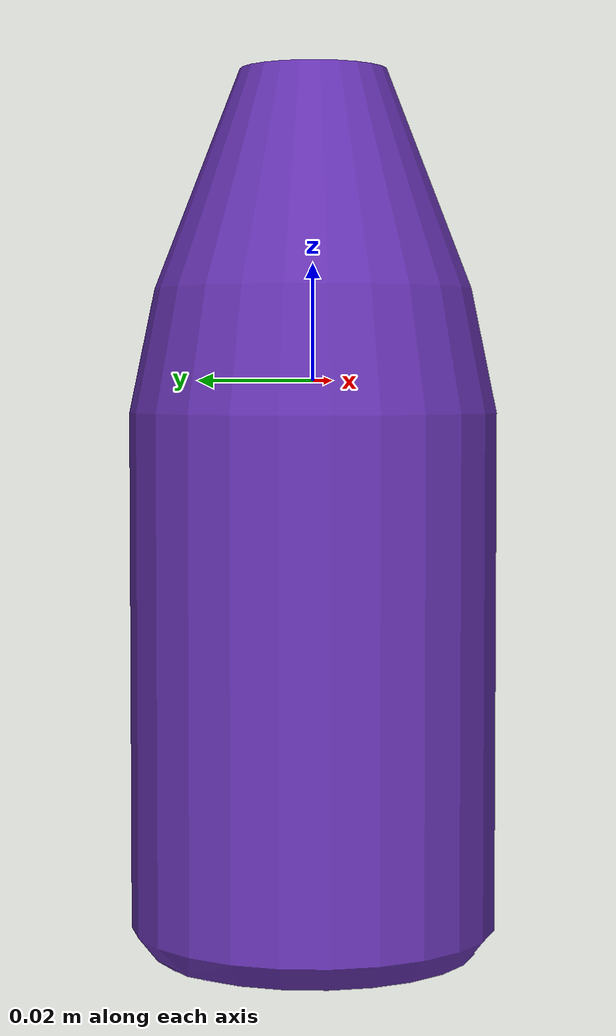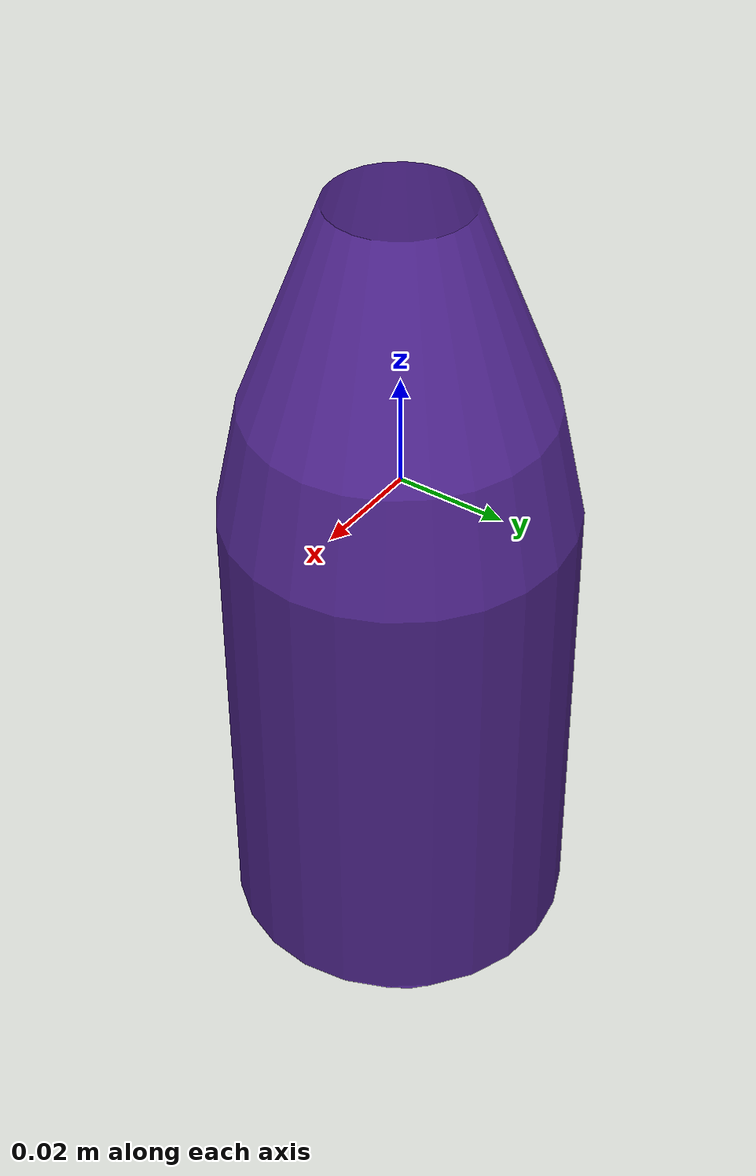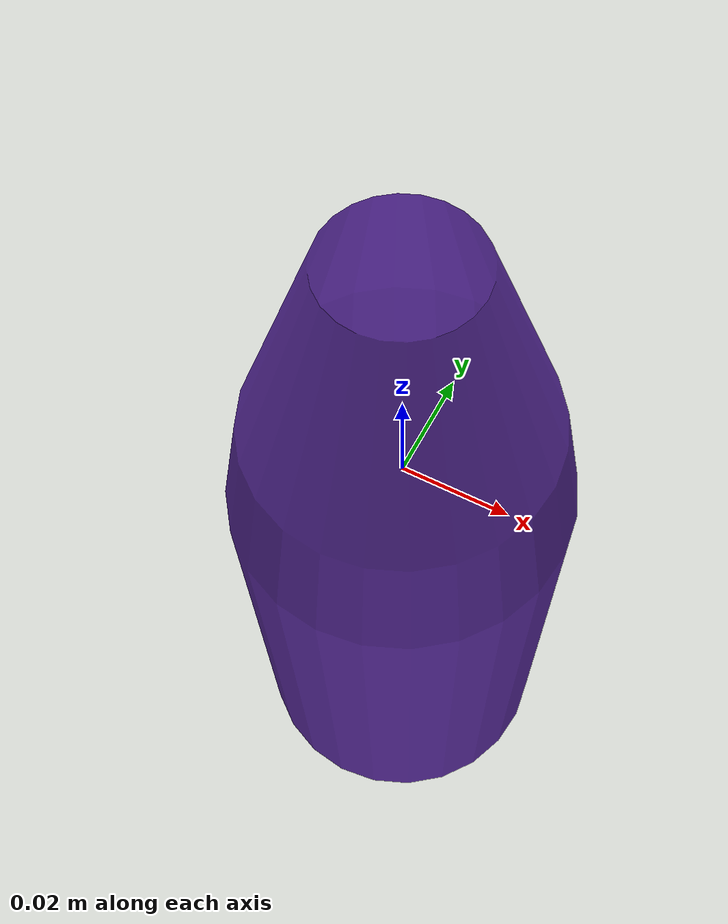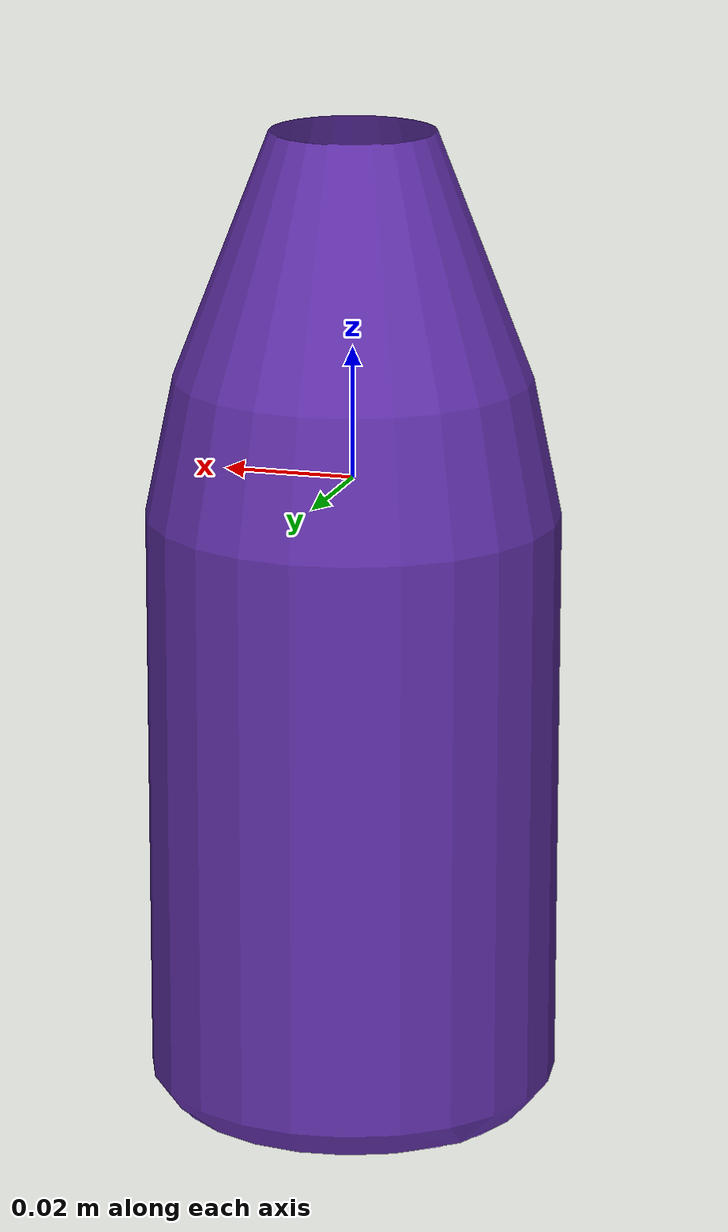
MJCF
<mujoco model="top_watertight_tiny">
  <default>
    <default group="2" type="mesh" contype="0" conaffinity="0">
      <geom group="2" type="mesh" contype="0" conaffinity="0"/>
    </default>
    <default group="3" type="mesh">
      <geom group="3" type="mesh"/>
    </default>
  </default>
  <asset>
    <mesh file="top_watertight_tiny.obj"/>
    <mesh file="top_watertight_tiny_collision_0.obj"/>
    <mesh file="top_watertight_tiny_collision_1.obj"/>
    <mesh file="top_watertight_tiny_collision_2.obj"/>
    <mesh file="top_watertight_tiny_collision_3.obj"/>
    <mesh file="top_watertight_tiny_collision_4.obj"/>
    <mesh file="top_watertight_tiny_collision_5.obj"/>
    <mesh file="top_watertight_tiny_collision_6.obj"/>
    <mesh file="top_watertight_tiny_collision_7.obj"/>
    <mesh file="top_watertight_tiny_collision_8.obj"/>
    <mesh file="top_watertight_tiny_collision_9.obj"/>
    <mesh file="top_watertight_tiny_collision_10.obj"/>
    <mesh file="top_watertight_tiny_collision_11.obj"/>
    <mesh file="top_watertight_tiny_collision_12.obj"/>
    <mesh file="top_watertight_tiny_collision_13.obj"/>
    <mesh file="top_watertight_tiny_collision_14.obj"/>
    <mesh file="top_watertight_tiny_collision_15.obj"/>
    <mesh file="top_watertight_tiny_collision_16.obj"/>
    <mesh file="top_watertight_tiny_collision_17.obj"/>
    <mesh file="top_watertight_tiny_collision_18.obj"/>
    <mesh file="top_watertight_tiny_collision_19.obj"/>
    <mesh file="top_watertight_tiny_collision_20.obj"/>
    <mesh file="top_watertight_tiny_collision_21.obj"/>
    <mesh file="top_watertight_tiny_collision_22.obj"/>
    <mesh file="top_watertight_tiny_collision_23.obj"/>
    <mesh file="top_watertight_tiny_collision_24.obj"/>
    <mesh file="top_watertight_tiny_collision_25.obj"/>
    <mesh file="top_watertight_tiny_collision_26.obj"/>
    <mesh file="top_watertight_tiny_collision_27.obj"/>
    <mesh file="top_watertight_tiny_collision_28.obj"/>
    <mesh file="top_watertight_tiny_collision_29.obj"/>
    <mesh file="top_watertight_tiny_collision_30.obj"/>
    <mesh file="top_watertight_tiny_collision_31.obj"/>
    <mesh file="top_watertight_tiny_collision_32.obj"/>
    <mesh file="top_watertight_tiny_collision_33.obj"/>
    <mesh file="top_watertight_tiny_collision_34.obj"/>
    <mesh file="top_watertight_tiny_collision_35.obj"/>
    <mesh file="top_watertight_tiny_collision_36.obj"/>
    <mesh file="top_watertight_tiny_collision_37.obj"/>
    <mesh file="top_watertight_tiny_collision_38.obj"/>
    <mesh file="top_watertight_tiny_collision_39.obj"/>
    <mesh file="top_watertight_tiny_collision_40.obj"/>
    <mesh file="top_watertight_tiny_collision_41.obj"/>
    <mesh file="top_watertight_tiny_collision_42.obj"/>
    <mesh file="top_watertight_tiny_collision_43.obj"/>
    <mesh file="top_watertight_tiny_collision_44.obj"/>
    <mesh file="top_watertight_tiny_collision_45.obj"/>
    <mesh file="top_watertight_tiny_collision_46.obj"/>
    <mesh file="top_watertight_tiny_collision_47.obj"/>
    <mesh file="top_watertight_tiny_collision_48.obj"/>
    <mesh file="top_watertight_tiny_collision_49.obj"/>
    <mesh file="top_watertight_tiny_collision_50.obj"/>
    <mesh file="top_watertight_tiny_collision_51.obj"/>
    <mesh file="top_watertight_tiny_collision_52.obj"/>
    <mesh file="top_watertight_tiny_collision_53.obj"/>
    <mesh file="top_watertight_tiny_collision_54.obj"/>
    <mesh file="top_watertight_tiny_collision_55.obj"/>
    <mesh file="top_watertight_tiny_collision_56.obj"/>
    <mesh file="top_watertight_tiny_collision_57.obj"/>
    <mesh file="top_watertight_tiny_collision_58.obj"/>
    <mesh file="top_watertight_tiny_collision_59.obj"/>
    <mesh file="top_watertight_tiny_collision_60.obj"/>
    <mesh file="top_watertight_tiny_collision_61.obj"/>
    <mesh file="top_watertight_tiny_collision_62.obj"/>
    <mesh file="top_watertight_tiny_collision_63.obj"/>
    <mesh file="top_watertight_tiny_collision_64.obj"/>
    <mesh file="top_watertight_tiny_collision_65.obj"/>
    <mesh file="top_watertight_tiny_collision_66.obj"/>
    <mesh file="top_watertight_tiny_collision_67.obj"/>
    <mesh file="top_watertight_tiny_collision_68.obj"/>
    <mesh file="top_watertight_tiny_collision_69.obj"/>
    <mesh file="top_watertight_tiny_collision_70.obj"/>
    <mesh file="top_watertight_tiny_collision_71.obj"/>
    <mesh file="top_watertight_tiny_collision_72.obj"/>
    <mesh file="top_watertight_tiny_collision_73.obj"/>
    <mesh file="top_watertight_tiny_collision_74.obj"/>
    <mesh file="top_watertight_tiny_collision_75.obj"/>
    <mesh file="top_watertight_tiny_collision_76.obj"/>
    <mesh file="top_watertight_tiny_collision_77.obj"/>
    <mesh file="top_watertight_tiny_collision_78.obj"/>
    <mesh file="top_watertight_tiny_collision_79.obj"/>
    <mesh file="top_watertight_tiny_collision_80.obj"/>
    <mesh file="top_watertight_tiny_collision_81.obj"/>
    <mesh file="top_watertight_tiny_collision_82.obj"/>
  </asset>
  <worldbody>
    <body name="top_watertight_tiny">
      <freejoint/>
      <geom mesh="top_watertight_tiny" group="2" type="mesh" rgba="0.4 0.2 0.7 1" contype="0" conaffinity="0"/>
      <geom mesh="top_watertight_tiny_collision_0" rgba="0.49883784449646984 0.246895000223888 0.16158867115685116 1" group="3" type="mesh"/>
      <geom mesh="top_watertight_tiny_collision_1" rgba="0.8345473105322501 0.25377192499867696 0.39321501535068326 1" group="3" type="mesh"/>
      <geom mesh="top_watertight_tiny_collision_2" rgba="0.2550216522857788 0.3245934787245712 0.8836250176641155 1" group="3" type="mesh"/>
      <geom mesh="top_watertight_tiny_collision_3" rgba="0.14826445036341396 0.8066232600685955 0.9007736870052253 1" group="3" type="mesh"/>
      <geom mesh="top_watertight_tiny_collision_4" rgba="0.28227866197487705 0.49570641920752334 0.16747657972650187 1" group="3" type="mesh"/>
      <geom mesh="top_watertight_tiny_collision_5" rgba="0.28502695696535985 0.9426089094257076 0.9849852484269805 1" group="3" type="mesh"/>
      <geom mesh="top_watertight_tiny_collision_6" rgba="0.05626545187940246 0.6287144068096627 0.39869210786258025 1" group="3" type="mesh"/>
      <geom mesh="top_watertight_tiny_collision_7" rgba="0.8283683494532545 0.2509252008094861 0.6738826889560452 1" group="3" type="mesh"/>
      <geom mesh="top_watertight_tiny_collision_8" rgba="0.6534201178815007 0.5609492384752743 0.15457730560713534 1" group="3" type="mesh"/>
      <geom mesh="top_watertight_tiny_collision_9" rgba="0.6429444181970184 0.15714382337910926 0.456624958087295 1" group="3" type="mesh"/>
      <geom mesh="top_watertight_tiny_collision_10" rgba="0.5450225480032104 0.030394017111941896 0.5532561704240037 1" group="3" type="mesh"/>
      <geom mesh="top_watertight_tiny_collision_11" rgba="0.9167375720371018 0.6156698111652914 0.30447335632587713 1" group="3" type="mesh"/>
      <geom mesh="top_watertight_tiny_collision_12" rgba="0.962463308652028 0.3905603219165593 0.29472620906892977 1" group="3" type="mesh"/>
      <geom mesh="top_watertight_tiny_collision_13" rgba="0.8199889108243177 0.6474923560538576 0.6391054816819643 1" group="3" type="mesh"/>
      <geom mesh="top_watertight_tiny_collision_14" rgba="0.8562449450970382 0.557012700590551 0.7347422034914745 1" group="3" type="mesh"/>
      <geom mesh="top_watertight_tiny_collision_15" rgba="0.4182069440744033 0.4543724260908353 0.047659050217376375 1" group="3" type="mesh"/>
      <geom mesh="top_watertight_tiny_collision_16" rgba="0.09126107637779213 0.4941117570213627 0.6288863748668974 1" group="3" type="mesh"/>
      <geom mesh="top_watertight_tiny_collision_17" rgba="0.7946214365258446 0.36136801596849866 0.7922639244201731 1" group="3" type="mesh"/>
      <geom mesh="top_watertight_tiny_collision_18" rgba="0.48126517186135953 0.5500439485715393 0.9972539067765988 1" group="3" type="mesh"/>
      <geom mesh="top_watertight_tiny_collision_19" rgba="0.9317512762726756 0.5854053644618584 0.7313646300559788 1" group="3" type="mesh"/>
      <geom mesh="top_watertight_tiny_collision_20" rgba="0.8401127687544482 0.8610434688496024 0.06658368284452965 1" group="3" type="mesh"/>
      <geom mesh="top_watertight_tiny_collision_21" rgba="0.8668011215045307 0.12933630222982184 0.5203769494060676 1" group="3" type="mesh"/>
      <geom mesh="top_watertight_tiny_collision_22" rgba="0.7922736238508549 0.8201267228727137 0.5548340246789137 1" group="3" type="mesh"/>
      <geom mesh="top_watertight_tiny_collision_23" rgba="0.0753454889962678 0.24593654317796332 0.13923263222710303 1" group="3" type="mesh"/>
      <geom mesh="top_watertight_tiny_collision_24" rgba="0.8996831504346626 0.7059565617067342 0.26214386651165467 1" group="3" type="mesh"/>
      <geom mesh="top_watertight_tiny_collision_25" rgba="0.7959513061702392 0.4680545767129437 0.14105629942936515 1" group="3" type="mesh"/>
      <geom mesh="top_watertight_tiny_collision_26" rgba="0.26677246817408895 0.15224153459277223 0.258093090004186 1" group="3" type="mesh"/>
      <geom mesh="top_watertight_tiny_collision_27" rgba="0.4768877632445466 0.044402618325953824 0.07191120494806547 1" group="3" type="mesh"/>
      <geom mesh="top_watertight_tiny_collision_28" rgba="0.31164276826048076 0.16715786681178701 0.8828898023186729 1" group="3" type="mesh"/>
      <geom mesh="top_watertight_tiny_collision_29" rgba="0.7377835541165819 0.9626112428824883 0.26507297216934866 1" group="3" type="mesh"/>
      <geom mesh="top_watertight_tiny_collision_30" rgba="0.13656161692034918 0.39690502873597877 0.05755895516447018 1" group="3" type="mesh"/>
      <geom mesh="top_watertight_tiny_collision_31" rgba="0.12938877627407896 0.8250663199161751 0.9616704905376701 1" group="3" type="mesh"/>
      <geom mesh="top_watertight_tiny_collision_32" rgba="0.07998868319259922 0.15925588995471984 0.3887032042973799 1" group="3" type="mesh"/>
      <geom mesh="top_watertight_tiny_collision_33" rgba="0.7346118755346789 0.6079297969501118 0.23192874482633674 1" group="3" type="mesh"/>
      <geom mesh="top_watertight_tiny_collision_34" rgba="0.23037015617190648 0.11932732012183711 0.11004629763727813 1" group="3" type="mesh"/>
      <geom mesh="top_watertight_tiny_collision_35" rgba="0.67399789985303 0.04065309619964108 0.9372915472786318 1" group="3" type="mesh"/>
      <geom mesh="top_watertight_tiny_collision_36" rgba="0.4845434306790424 0.9463269728558577 0.8197878755453236 1" group="3" type="mesh"/>
      <geom mesh="top_watertight_tiny_collision_37" rgba="0.09610699307228376 0.31974591125785257 0.00937636059854674 1" group="3" type="mesh"/>
      <geom mesh="top_watertight_tiny_collision_38" rgba="0.8577960857447914 0.21085853054512382 0.8156777924136619 1" group="3" type="mesh"/>
      <geom mesh="top_watertight_tiny_collision_39" rgba="0.5041747199347316 0.5757690901050623 0.9399555377846293 1" group="3" type="mesh"/>
      <geom mesh="top_watertight_tiny_collision_40" rgba="0.30591235184135745 0.5183761118273235 0.47844046559222286 1" group="3" type="mesh"/>
      <geom mesh="top_watertight_tiny_collision_41" rgba="0.6476668680019748 0.952457405089565 0.6865597421112919 1" group="3" type="mesh"/>
      <geom mesh="top_watertight_tiny_collision_42" rgba="0.3614138671728806 0.02865112463499553 0.5020785477419976 1" group="3" type="mesh"/>
      <geom mesh="top_watertight_tiny_collision_43" rgba="0.7594928226103579 0.20270764067942892 0.6066542270247074 1" group="3" type="mesh"/>
      <geom mesh="top_watertight_tiny_collision_44" rgba="0.8666217145891124 0.9198317900646883 0.02443120821557898 1" group="3" type="mesh"/>
      <geom mesh="top_watertight_tiny_collision_45" rgba="0.8660516576301012 0.14119109973625854 0.33741050867823785 1" group="3" type="mesh"/>
      <geom mesh="top_watertight_tiny_collision_46" rgba="0.6696881249126978 0.9004442980537171 0.30972602218935086 1" group="3" type="mesh"/>
      <geom mesh="top_watertight_tiny_collision_47" rgba="0.012778210428603831 0.7269477607841739 0.9562801608317336 1" group="3" type="mesh"/>
      <geom mesh="top_watertight_tiny_collision_48" rgba="0.7005786193869399 0.9414450529822467 0.5362391769698661 1" group="3" type="mesh"/>
      <geom mesh="top_watertight_tiny_collision_49" rgba="0.23148975046749742 0.1725358798670048 0.932935717814535 1" group="3" type="mesh"/>
      <geom mesh="top_watertight_tiny_collision_50" rgba="0.1975168599999617 0.5306693585337099 0.40061918653192574 1" group="3" type="mesh"/>
      <geom mesh="top_watertight_tiny_collision_51" rgba="0.8239767940267443 0.18174455231531472 0.49648048653543164 1" group="3" type="mesh"/>
      <geom mesh="top_watertight_tiny_collision_52" rgba="0.9479638962614196 0.5669959886411082 0.9044376612857019 1" group="3" type="mesh"/>
      <geom mesh="top_watertight_tiny_collision_53" rgba="0.2843377144932634 0.06999650065785035 0.2150054711271524 1" group="3" type="mesh"/>
      <geom mesh="top_watertight_tiny_collision_54" rgba="0.13404140946627607 0.4605951238869608 0.25585290080033163 1" group="3" type="mesh"/>
      <geom mesh="top_watertight_tiny_collision_55" rgba="0.8190853291461876 0.6737327851071673 0.5586620085068742 1" group="3" type="mesh"/>
      <geom mesh="top_watertight_tiny_collision_56" rgba="0.5446383721193833 0.14438032645607657 0.5819741478615044 1" group="3" type="mesh"/>
      <geom mesh="top_watertight_tiny_collision_57" rgba="0.8843684733446897 0.40118331577162525 0.6311644193741455 1" group="3" type="mesh"/>
      <geom mesh="top_watertight_tiny_collision_58" rgba="0.10084208035691733 0.02011061756631316 0.43134211620891216 1" group="3" type="mesh"/>
      <geom mesh="top_watertight_tiny_collision_59" rgba="0.5817815507629659 0.4858959612599776 0.7624842726270243 1" group="3" type="mesh"/>
      <geom mesh="top_watertight_tiny_collision_60" rgba="0.19128116890148983 0.30567898166775376 0.6489092612916701 1" group="3" type="mesh"/>
      <geom mesh="top_watertight_tiny_collision_61" rgba="0.4388741155553896 0.8754695884744577 0.5717754126347603 1" group="3" type="mesh"/>
      <geom mesh="top_watertight_tiny_collision_62" rgba="0.20976924019871823 0.07375289689637843 0.2443386967194302 1" group="3" type="mesh"/>
      <geom mesh="top_watertight_tiny_collision_63" rgba="0.2450817808999337 0.25580760919392065 0.636953441086724 1" group="3" type="mesh"/>
      <geom mesh="top_watertight_tiny_collision_64" rgba="0.49705685289886603 0.33545720366757814 0.09305810550189941 1" group="3" type="mesh"/>
      <geom mesh="top_watertight_tiny_collision_65" rgba="0.7122182897467777 0.8396492902526341 0.5699249417660032 1" group="3" type="mesh"/>
      <geom mesh="top_watertight_tiny_collision_66" rgba="0.09310654440340382 0.6430267088093056 0.8458760161538402 1" group="3" type="mesh"/>
      <geom mesh="top_watertight_tiny_collision_67" rgba="0.27253613392870013 0.20312711957087426 0.24983888047663938 1" group="3" type="mesh"/>
      <geom mesh="top_watertight_tiny_collision_68" rgba="0.5176705496196948 0.6039802004586116 0.2464519124405854 1" group="3" type="mesh"/>
      <geom mesh="top_watertight_tiny_collision_69" rgba="0.7484947327174984 0.8404785410892883 0.711487997297769 1" group="3" type="mesh"/>
      <geom mesh="top_watertight_tiny_collision_70" rgba="0.21791402636332358 0.8257143949485888 0.989374844882345 1" group="3" type="mesh"/>
      <geom mesh="top_watertight_tiny_collision_71" rgba="0.3431435700334231 0.7780082189564359 0.7671430399108722 1" group="3" type="mesh"/>
      <geom mesh="top_watertight_tiny_collision_72" rgba="0.8734109093337425 0.7391601403611141 0.47962233560192935 1" group="3" type="mesh"/>
      <geom mesh="top_watertight_tiny_collision_73" rgba="0.45624338278493115 0.7138810121539345 0.4071028940888154 1" group="3" type="mesh"/>
      <geom mesh="top_watertight_tiny_collision_74" rgba="0.26782269665978387 0.7832374270868119 0.7083857239876366 1" group="3" type="mesh"/>
      <geom mesh="top_watertight_tiny_collision_75" rgba="0.3614395234734131 0.6204487803802944 0.30180880255484244 1" group="3" type="mesh"/>
      <geom mesh="top_watertight_tiny_collision_76" rgba="0.43742878095121596 0.15899089066809513 0.42924159631190484 1" group="3" type="mesh"/>
      <geom mesh="top_watertight_tiny_collision_77" rgba="0.801746501131397 0.32360006646112516 0.5595699027540733 1" group="3" type="mesh"/>
      <geom mesh="top_watertight_tiny_collision_78" rgba="0.761139397386018 0.7074883864237543 0.5301917918861369 1" group="3" type="mesh"/>
      <geom mesh="top_watertight_tiny_collision_79" rgba="0.361255121411043 0.2786469974366017 0.43981128871333997 1" group="3" type="mesh"/>
      <geom mesh="top_watertight_tiny_collision_80" rgba="0.963369989600435 0.43225411009180337 0.028408883811121388 1" group="3" type="mesh"/>
      <geom mesh="top_watertight_tiny_collision_81" rgba="0.853790711922314 0.6525411928506771 0.44348426565989707 1" group="3" type="mesh"/>
      <geom mesh="top_watertight_tiny_collision_82" rgba="0.3527706277064371 0.43602902569022317 0.23401361515436014 1" group="3" type="mesh"/>
    </body>
  </worldbody>
</mujoco>
